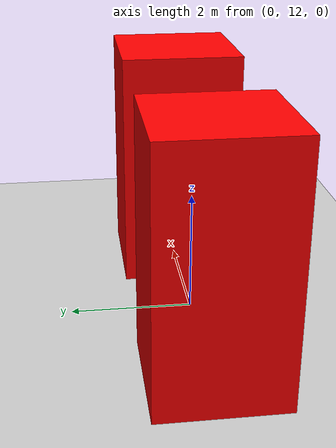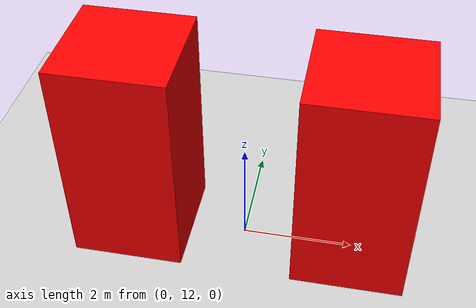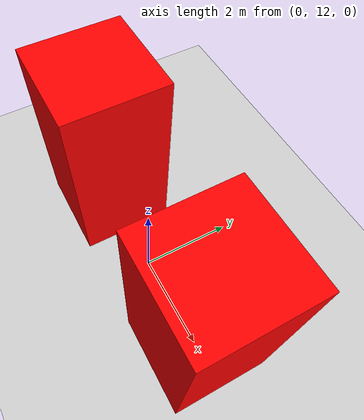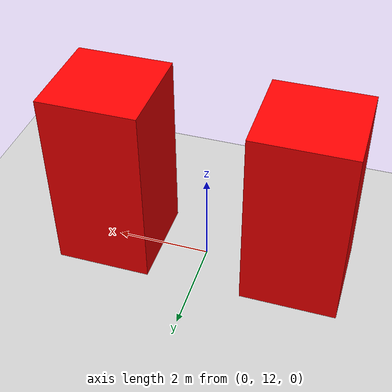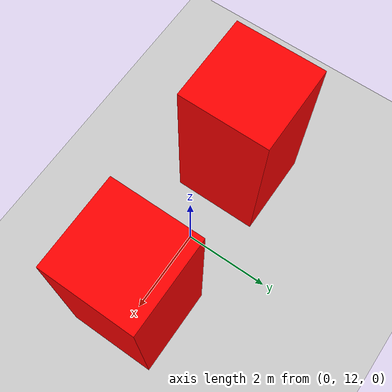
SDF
<?xml version="1.0" ?>
<sdf version="1.8">
  <world name="default">

    <plugin filename="gz-sim-physics-system" name="gz::sim::systems::Physics"/>
    <plugin filename="gz-sim-scene-broadcaster-system" name="gz::sim::systems::SceneBroadcaster"/>
    <plugin filename="gz-sim-user-commands-system" name="gz::sim::systems::UserCommands"/>
    <plugin filename="gz-sim-imu-system" name="gz::sim::systems::Imu"/>
    <plugin filename="gz-sim-sensors-system" name="gz::sim::systems::Sensors"/>

    <plugin filename="gz-sim-navsat-system" name="gz::sim::systems::NavSat"/>

    <light type="directional" name="sun">
      <cast_shadows>true</cast_shadows>
      <pose>0 0 10 0 0 0</pose>
      <diffuse>0.8 0.8 0.8 1</diffuse>
      <specular>0.2 0.2 0.2 1</specular>
      <attenuation>
        <range>1000</range>
        <constant>0.9</constant>
        <linear>0.01</linear>
        <quadratic>0.001</quadratic>
      </attenuation>
      <direction>-0.5 0.1 -0.9</direction>
    </light>

    <model name="ground_plane">
      <static>true</static>
      <link name="link">
        <collision name="collision">
          <geometry>
            <plane>
              <normal>0 0 1</normal>
              <size>100 100</size>
            </plane>
          </geometry>
        </collision>
        <visual name="visual">
          <geometry>
            <plane>
              <normal>0 0 1</normal>
              <size>100 100</size>
            </plane>
          </geometry>
          <material>
            <ambient>0.8 0.8 0.8 1</ambient>
            <diffuse>0.8 0.8 0.8 1</diffuse>
            <specular>0.8 0.8 0.8 1</specular>
          </material>
        </visual>
      </link>
    </model>

    <model name="obs_l">
      <static>true</static>
      <pose>2 12 2 0 0 0</pose>
      <link name="l">
        <collision name="c">
          <geometry><box><size>2 2 4</size></box></geometry>
        </collision>
        <visual name="v">
          <geometry><box><size>2 2 4</size></box></geometry>
          <material>
            <ambient>1 0 0 1</ambient>
            <diffuse>1 0 0 1</diffuse>
          </material>
        </visual>
      </link>
    </model>

    <model name="obs_r">
      <static>true</static>
      <pose>-2 12 2 0 0 0</pose>
      <link name="l">
        <collision name="c">
          <geometry><box><size>2 2 4</size></box></geometry>
        </collision>
        <visual name="v">
          <geometry><box><size>2 2 4</size></box></geometry>
          <material>
            <ambient>1 0 0 1</ambient>
            <diffuse>1 0 0 1</diffuse>
          </material>
        </visual>
      </link>
    </model>

    <spherical_coordinates>
      <surface_model>EARTH_WGS84</surface_model>
      <latitude_deg>36.61002559225</latitude_deg>
      <longitude_deg>127.28772570583</longitude_deg>
      <elevation>0.0</elevation>
      <heading_deg>0.0</heading_deg>
    </spherical_coordinates>

  </world>
</sdf>
